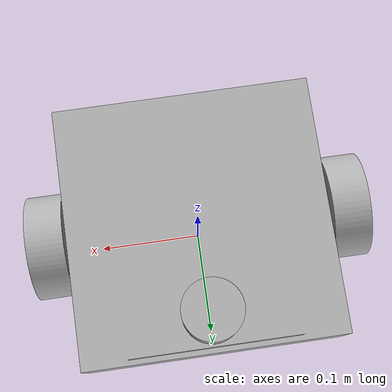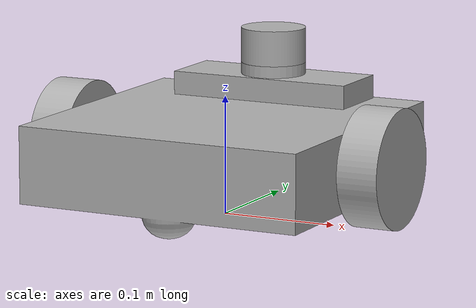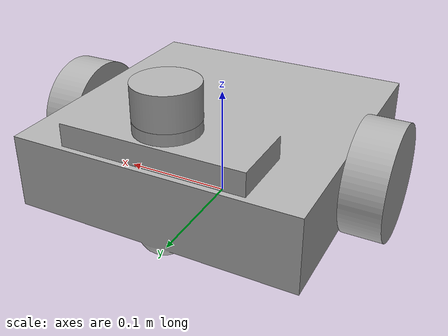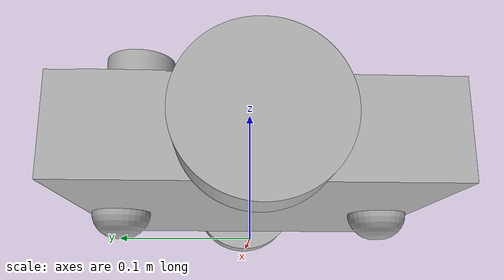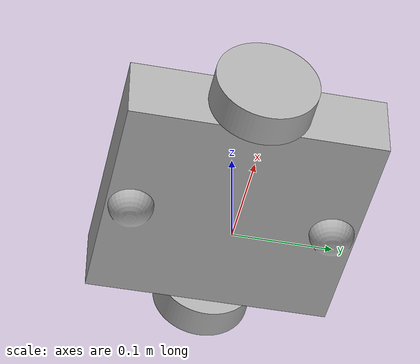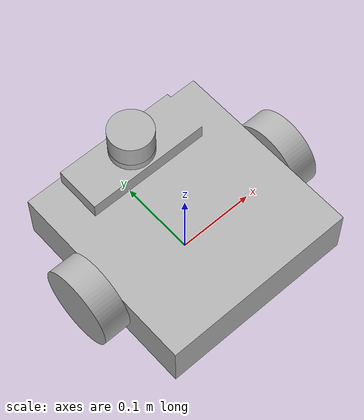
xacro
<?xml version="1.0" ?>
<robot name="ROBOT" xmlns:xacro="http://www.ros.org/wiki/xacro">

<xacro:include filename="$(find ROBOT_description)/urdf/materials.xacro" />
<xacro:include filename="$(find ROBOT_description)/urdf/ROBOT.trans" />
<xacro:include filename="$(find ROBOT_description)/urdf/ROBOT.gazebo" />
<link name="base_link">
  <inertial>
    <origin xyz="3.465925149719148e-14 0.004492444103832285 0.05429246005931272" rpy="0 0 0"/>
    <mass value="4.581769035764288"/>
    <inertia ixx="0.026764" iyy="0.024908" izz="0.047599" ixy="0.0" iyz="-0.000872" ixz="0.0"/>
  </inertial>
  <visual>
    <origin xyz="0 0 0" rpy="0 0 0"/>
    <geometry>
      <mesh filename="package://ROBOT_description/meshes/base_link.stl" scale="0.001 0.001 0.001"/>
    </geometry>
    <material name="silver"/>
  </visual>
  <collision>
    <origin xyz="0 0 0" rpy="0 0 0"/>
    <geometry>
      <mesh filename="package://ROBOT_description/meshes/base_link.stl" scale="0.001 0.001 0.001"/>
    </geometry>
  </collision>
</link>

<link name="right_wheel_1">
  <inertial>
    <origin xyz="-0.017499999999999988 -8.271461571602899e-18 0.0" rpy="0 0 0"/>
    <mass value="0.2556471021858694"/>
    <inertia ixx="0.00032" iyy="0.000186" izz="0.000186" ixy="0.0" iyz="-0.0" ixz="0.0"/>
  </inertial>
  <visual>
    <origin xyz="0.125 -0.0 -0.0525" rpy="0 0 0"/>
    <geometry>
      <mesh filename="package://ROBOT_description/meshes/right_wheel_1.stl" scale="0.001 0.001 0.001"/>
    </geometry>
    <material name="silver"/>
  </visual>
  <collision>
    <origin xyz="0.125 -0.0 -0.0525" rpy="0 0 0"/>
    <geometry>
      <mesh filename="package://ROBOT_description/meshes/right_wheel_1.stl" scale="0.001 0.001 0.001"/>
    </geometry>
  </collision>
</link>

<link name="left_wheel_1">
  <inertial>
    <origin xyz="0.017499999999999988 -8.271461571602899e-18 -6.938893903907228e-18" rpy="0 0 0"/>
    <mass value="0.2556471021858694"/>
    <inertia ixx="0.00032" iyy="0.000186" izz="0.000186" ixy="0.0" iyz="-0.0" ixz="-0.0"/>
  </inertial>
  <visual>
    <origin xyz="-0.125 -0.0 -0.0525" rpy="0 0 0"/>
    <geometry>
      <mesh filename="package://ROBOT_description/meshes/left_wheel_1.stl" scale="0.001 0.001 0.001"/>
    </geometry>
    <material name="silver"/>
  </visual>
  <collision>
    <origin xyz="-0.125 -0.0 -0.0525" rpy="0 0 0"/>
    <geometry>
      <mesh filename="package://ROBOT_description/meshes/left_wheel_1.stl" scale="0.001 0.001 0.001"/>
    </geometry>
  </collision>
</link>

<link name="lidar_1">
  <inertial>
    <origin xyz="0.0 0.0 0.015" rpy="0 0 0"/>
    <mass value="0.13185853415738905"/>
    <inertia ixx="3.5e-05" iyy="3.5e-05" izz="5e-05" ixy="-0.0" iyz="-0.0" ixz="0.0"/>
  </inertial>
  <visual>
    <origin xyz="-0.0 -0.09 -0.115" rpy="0 0 0"/>
    <geometry>
      <mesh filename="package://ROBOT_description/meshes/lidar_1.stl" scale="0.001 0.001 0.001"/>
    </geometry>
    <material name="silver"/>
  </visual>
  <collision>
    <origin xyz="-0.0 -0.09 -0.115" rpy="0 0 0"/>
    <geometry>
      <mesh filename="package://ROBOT_description/meshes/lidar_1.stl" scale="0.001 0.001 0.001"/>
    </geometry>
  </collision>
</link>

<joint name="Rev1" type="continuous">
  <origin xyz="-0.125 0.0 0.0525" rpy="0 0 0"/>
  <parent link="base_link"/>
  <child link="right_wheel_1"/>
  <axis xyz="-1.0 0.0 0.0"/>
</joint>

<joint name="Rev2" type="continuous">
  <origin xyz="0.125 0.0 0.0525" rpy="0 0 0"/>
  <parent link="base_link"/>
  <child link="left_wheel_1"/>
  <axis xyz="1.0 0.0 0.0"/>
</joint>

<joint name="Rigid3" type="fixed">
  <origin xyz="0.0 0.09 0.115" rpy="0 0 0"/>
  <parent link="base_link"/>
  <child link="lidar_1"/>
</joint>

</robot>

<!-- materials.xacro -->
<robot name="ROBOT" xmlns:xacro="http://www.ros.org/wiki/xacro" >

<material name="silver">
  <color rgba="0.700 0.700 0.700 1.000"/>
</material>

</robot>

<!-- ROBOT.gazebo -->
<robot name="ROBOT" xmlns:xacro="http://www.ros.org/wiki/xacro" >

<xacro:property name="body_color" value="Gazebo/Silver" />

<gazebo>
  <plugin name="control" filename="libgazebo_ros_control.so"/>
</gazebo>
<gazebo reference="base_link">
  <material>${body_color}</material>
  <mu1>0.2</mu1>
  <mu2>0.2</mu2>
  <selfCollide>true</selfCollide>
  <gravity>true</gravity>
</gazebo>

<gazebo reference="right_wheel_1">
  <material>${body_color}</material>
  <mu1>0.2</mu1>
  <mu2>0.2</mu2>
  <selfCollide>true</selfCollide>
</gazebo>

<gazebo reference="left_wheel_1">
  <material>${body_color}</material>
  <mu1>0.2</mu1>
  <mu2>0.2</mu2>
  <selfCollide>true</selfCollide>
</gazebo>

<gazebo reference="lidar_1">
  <material>${body_color}</material>
  <mu1>0.2</mu1>
  <mu2>0.2</mu2>
  <selfCollide>true</selfCollide>
</gazebo>

</robot>
